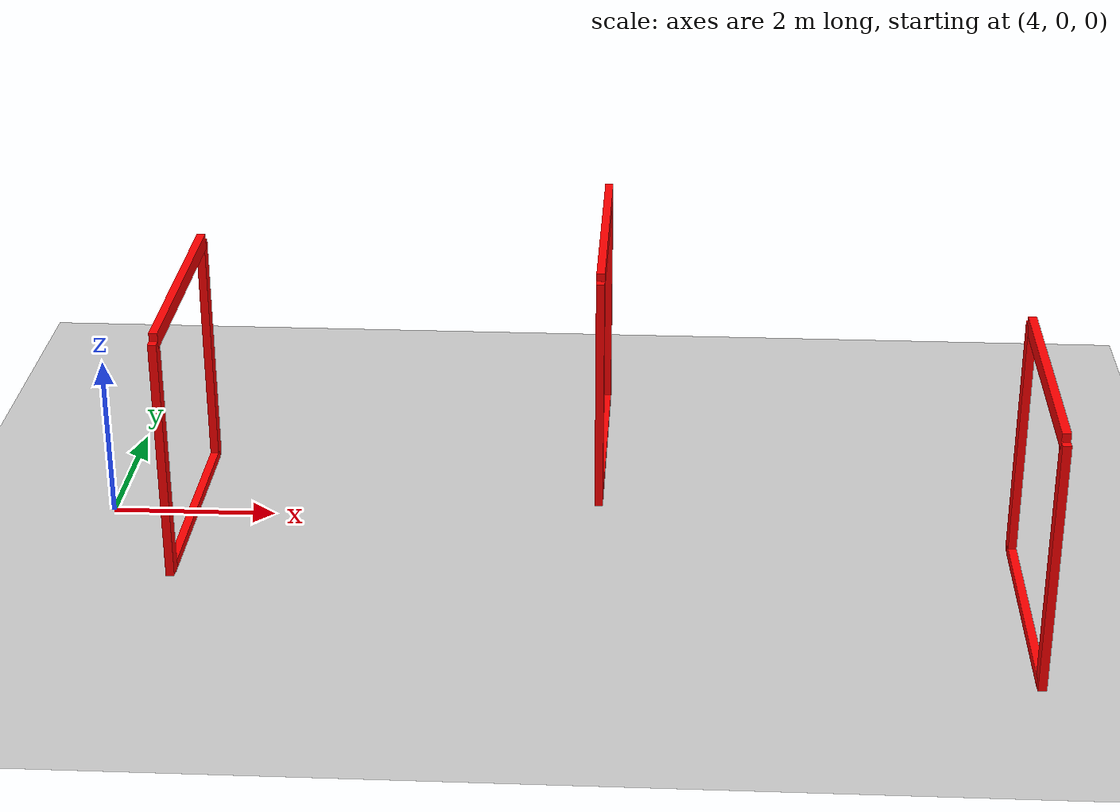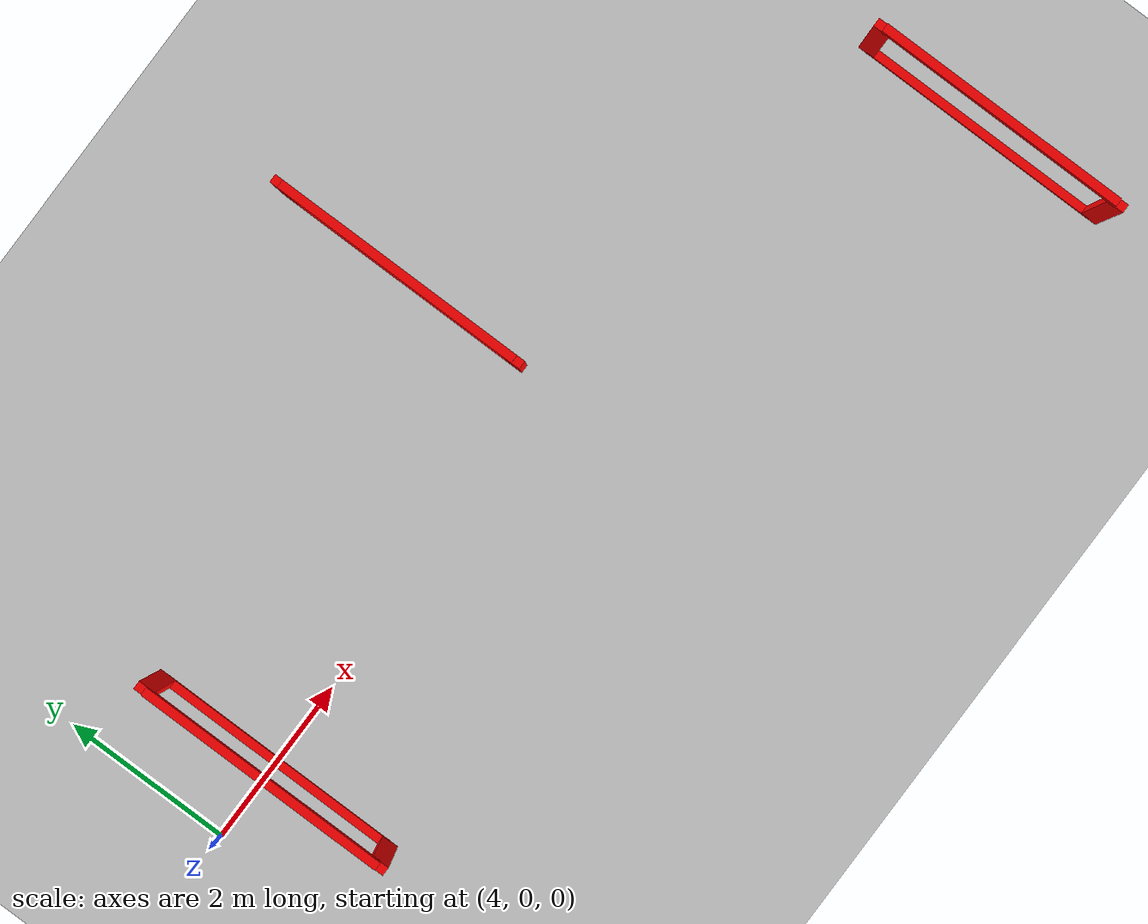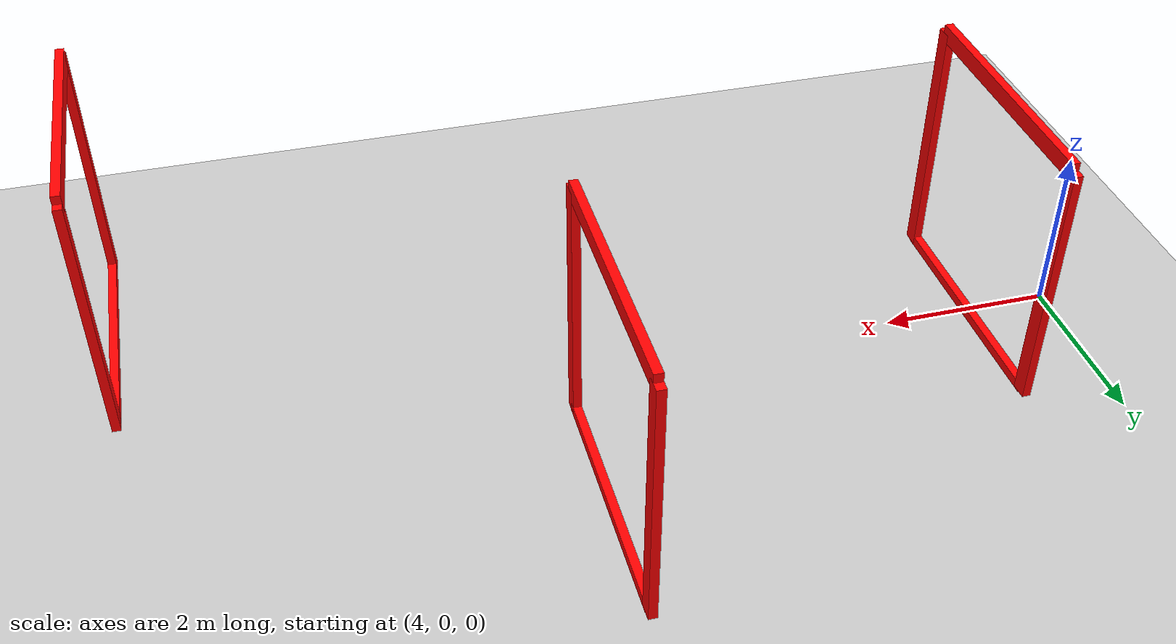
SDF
<sdf version="1.6">
 <world name="multicopter">
  <physics name="4ms" type="ignored">
   <max_step_size>0.004</max_step_size>
   <real_time_factor>1.0</real_time_factor>
  </physics>
  <plugin filename="gz-sim-physics-system" name="gz::sim::systems::Physics"/>
  <plugin filename="gz-sim-scene-broadcaster-system" name="gz::sim::systems::SceneBroadcaster"/>
  <plugin filename="gz-sim-user-commands-system" name="gz::sim::systems::UserCommands"/>
  <plugin filename="gz-sim-sensors-system" name="gz::sim::systems::Sensors">
   <render_engine>ogre2</render_engine>
  </plugin>
  <light type="directional" name="sun">
   <pose>0 0 10 0 0 0</pose>
   <diffuse>0.8 0.8 0.8 1</diffuse>
   <specular>0.2 0.2 0.2 1</specular>
   <attenuation>
    <range>1000</range>
    <constant>0.9</constant>
    <linear>0.01</linear>
    <quadratic>0.001</quadratic>
   </attenuation>
   <direction>-0.5 0.1 -0.9</direction>
  </light>
  <model name="ground_plane">
   <static>true</static>
   <link name="link">
    <collision name="collision">
     <geometry><plane><normal>0 0 1</normal><size>100 100</size></plane></geometry>
    </collision>
    <visual name="visual">
     <geometry><plane><normal>0 0 1</normal><size>100 100</size></plane></geometry>
     <material>
      <ambient>0.8 0.8 0.8 1</ambient>
      <diffuse>0.8 0.8 0.8 1</diffuse>
      <specular>0.8 0.8 0.8 1</specular>
     </material>
    </visual>
   </link>
  </model>
  <model name="gate_1">
   <pose>5 0 1.5 0 0 0</pose>
   <static>true</static>
   <link name="top">
    <pose>0 0 1.5 0 0 0</pose>
    <visual name="v">
     <geometry><box><size>0.1 3.0 0.2</size></box></geometry>
     <material><ambient>1 0 0 1</ambient><diffuse>1 0 0 1</diffuse></material>
    </visual>
    <collision name="c"><geometry><box><size>0.1 3.0 0.2</size></box></geometry></collision>
   </link>
   <link name="bottom">
    <pose>0 0 -1.5 0 0 0</pose>
    <visual name="v">
     <geometry><box><size>0.1 3.0 0.2</size></box></geometry>
     <material><ambient>1 0 0 1</ambient><diffuse>1 0 0 1</diffuse></material>
    </visual>
    <collision name="c"><geometry><box><size>0.1 3.0 0.2</size></box></geometry></collision>
   </link>
   <link name="left">
    <pose>0 1.5 0 0 0 0</pose>
    <visual name="v">
     <geometry><box><size>0.1 0.2 3.0</size></box></geometry>
     <material><ambient>1 0 0 1</ambient><diffuse>1 0 0 1</diffuse></material>
    </visual>
    <collision name="c"><geometry><box><size>0.1 0.2 3.0</size></box></geometry></collision>
   </link>
   <link name="right">
    <pose>0 -1.5 0 0 0 0</pose>
    <visual name="v">
     <geometry><box><size>0.1 0.2 3.0</size></box></geometry>
     <material><ambient>1 0 0 1</ambient><diffuse>1 0 0 1</diffuse></material>
    </visual>
    <collision name="c"><geometry><box><size>0.1 0.2 3.0</size></box></geometry></collision>
   </link>
  </model>
  <model name="gate_2">
   <pose>10 2 1.5 0 0 0</pose>
   <static>true</static>
   <link name="top">
    <pose>0 0 1.5 0 0 0</pose>
    <visual name="v">
     <geometry><box><size>0.1 3.0 0.2</size></box></geometry>
     <material><ambient>1 0 0 1</ambient><diffuse>1 0 0 1</diffuse></material>
    </visual>
    <collision name="c"><geometry><box><size>0.1 3.0 0.2</size></box></geometry></collision>
   </link>
   <link name="bottom">
    <pose>0 0 -1.5 0 0 0</pose>
    <visual name="v">
     <geometry><box><size>0.1 3.0 0.2</size></box></geometry>
     <material><ambient>1 0 0 1</ambient><diffuse>1 0 0 1</diffuse></material>
    </visual>
    <collision name="c"><geometry><box><size>0.1 3.0 0.2</size></box></geometry></collision>
   </link>
   <link name="left">
    <pose>0 1.5 0 0 0 0</pose>
    <visual name="v">
     <geometry><box><size>0.1 0.2 3.0</size></box></geometry>
     <material><ambient>1 0 0 1</ambient><diffuse>1 0 0 1</diffuse></material>
    </visual>
    <collision name="c"><geometry><box><size>0.1 0.2 3.0</size></box></geometry></collision>
   </link>
   <link name="right">
    <pose>0 -1.5 0 0 0 0</pose>
    <visual name="v">
     <geometry><box><size>0.1 0.2 3.0</size></box></geometry>
     <material><ambient>1 0 0 1</ambient><diffuse>1 0 0 1</diffuse></material>
    </visual>
    <collision name="c"><geometry><box><size>0.1 0.2 3.0</size></box></geometry></collision>
   </link>
  </model>
  <model name="gate_3">
   <pose>15 -2 1.5 0 0 0</pose>
   <static>true</static>
   <link name="top">
    <pose>0 0 1.5 0 0 0</pose>
    <visual name="v">
     <geometry><box><size>0.1 3.0 0.2</size></box></geometry>
     <material><ambient>1 0 0 1</ambient><diffuse>1 0 0 1</diffuse></material>
    </visual>
    <collision name="c"><geometry><box><size>0.1 3.0 0.2</size></box></geometry></collision>
   </link>
   <link name="bottom">
    <pose>0 0 -1.5 0 0 0</pose>
    <visual name="v">
     <geometry><box><size>0.1 3.0 0.2</size></box></geometry>
     <material><ambient>1 0 0 1</ambient><diffuse>1 0 0 1</diffuse></material>
    </visual>
    <collision name="c"><geometry><box><size>0.1 3.0 0.2</size></box></geometry></collision>
   </link>
   <link name="left">
    <pose>0 1.5 0 0 0 0</pose>
    <visual name="v">
     <geometry><box><size>0.1 0.2 3.0</size></box></geometry>
     <material><ambient>1 0 0 1</ambient><diffuse>1 0 0 1</diffuse></material>
    </visual>
    <collision name="c"><geometry><box><size>0.1 0.2 3.0</size></box></geometry></collision>
   </link>
   <link name="right">
    <pose>0 -1.5 0 0 0 0</pose>
    <visual name="v">
     <geometry><box><size>0.1 0.2 3.0</size></box></geometry>
     <material><ambient>1 0 0 1</ambient><diffuse>1 0 0 1</diffuse></material>
    </visual>
    <collision name="c"><geometry><box><size>0.1 0.2 3.0</size></box></geometry></collision>
   </link>
  </model>
 </world>
</sdf>
